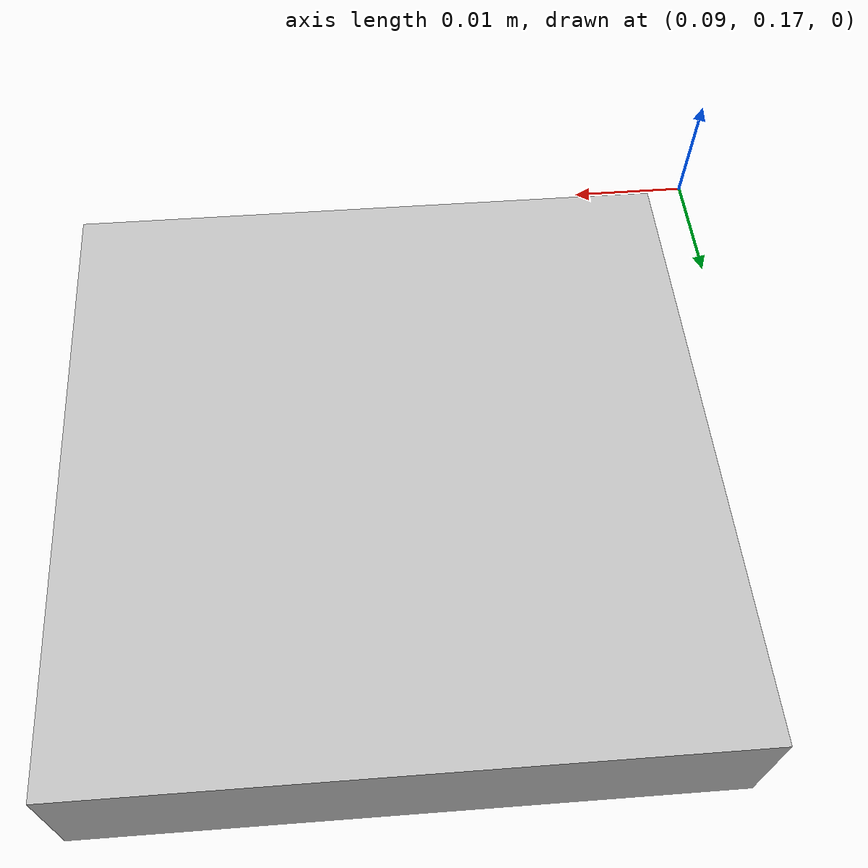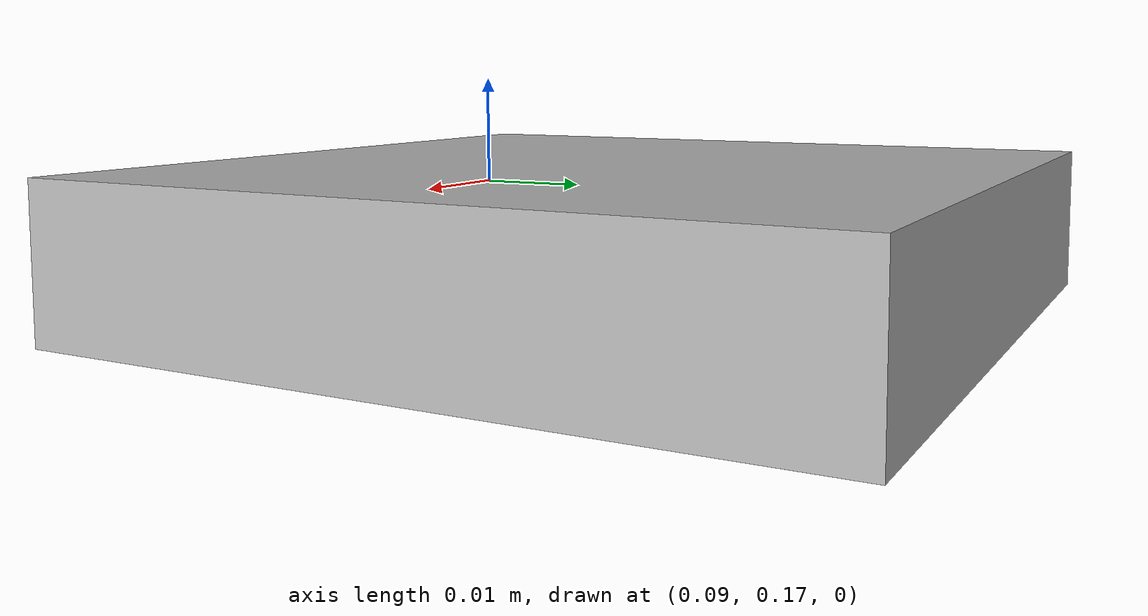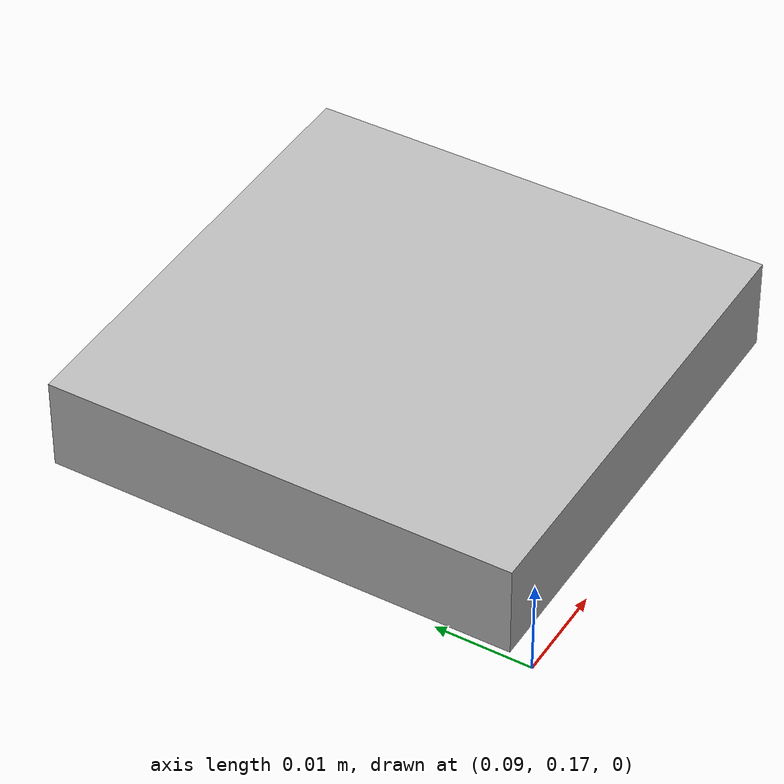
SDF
<?xml version="1.0" ?>
<sdf version="1.4">
  <model name="step">
    <static>true</static>
    <pose>0 0 0 0 0 0</pose>
    <link name="step_link">
    <pose>0.12 0.2 0 0 0 0</pose>
      <collision name="collision">
        <geometry>
          <box>
            <size>0.05 0.05 0.01</size>
          </box>
        </geometry>
        <surface>
          <friction>
            <ode>
              <mu>0.001</mu>
              <mu2>0.01</mu2>
            </ode>
          </friction>
        </surface>
      </collision>
      <visual name="visual">
        <geometry>
          <box>
            <size>0.05 0.05 0.01</size>
          </box>
        </geometry>
      </visual>
    </link>
  </model>
</sdf>
